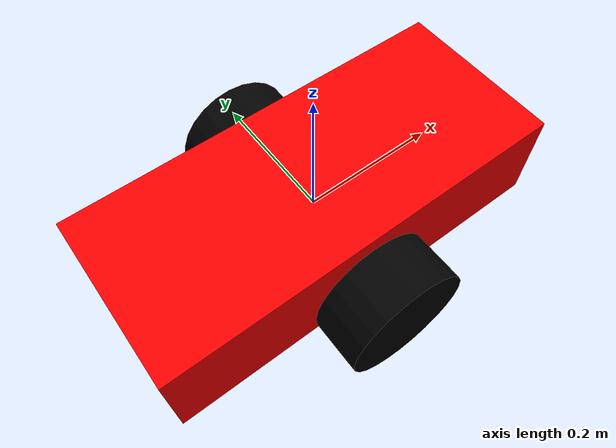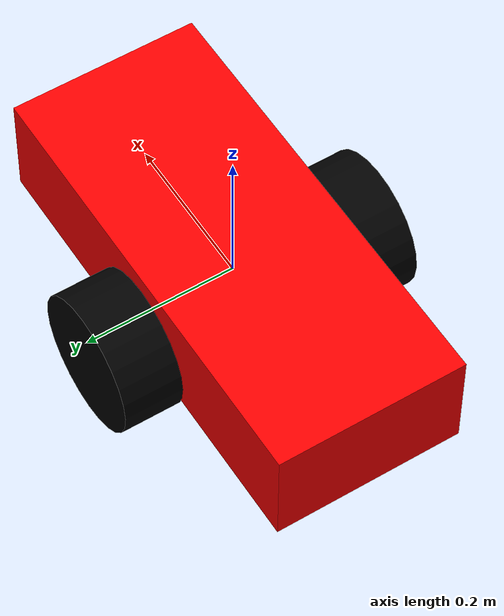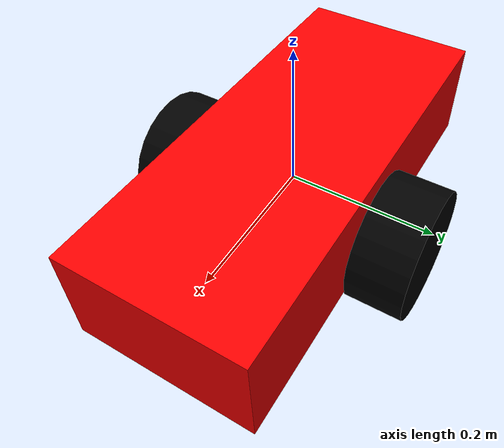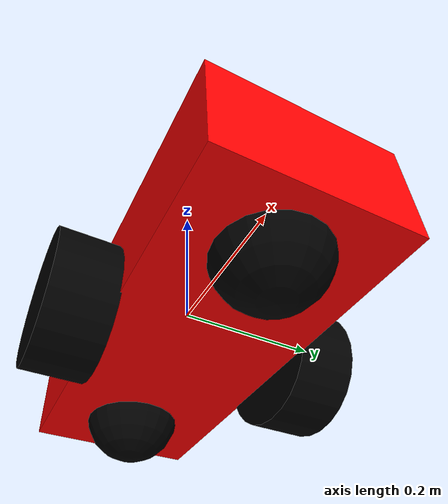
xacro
<?xml version="1.0" ?>
<robot name="mapping_rover" xmlns:xacro="http://ros.org/wiki/xacro">

<!-- ****************** ROBOT CONSTANTS *******************************  -->
  <!-- Define the size of the robot's main chassis in meters -->
  <xacro:property name="base_width" value="0.25"/>
  <xacro:property name="base_length" value="0.59"/>
  <xacro:property name="base_height" value="0.145"/>

  <!-- Define the shape of the robot's two back wheels in meters -->
  <xacro:property name="wheel_radius" value="0.09"/>
  <xacro:property name="wheel_width" value="0.08"/>

  <!-- Define the shape of the robot's two caster in meters -->
  <xacro:property name="caster_radius" value="0.07"/>

  <!-- x-axis points forward, y-axis points to left, z-axis points upwards -->

  <!-- Define the gap between the wheel and chassis along y-axis in meters -->
  <xacro:property name="wheel_ygap" value="0.0380"/>

  <!-- Position the wheels along the z-axis -->
  <xacro:property name="wheel_zoff" value="-0.0425"/>

  <!-- Position the wheels along the x-axis -->
  <xacro:property name="wheel_xoff" value="0"/>

  <!-- Position the front caster wheel along the x-axis -->
  <xacro:property name="front_caster_xoff" value="0.2"/>

  <!-- Position the front and back caster wheel along the z-axis -->
  <xacro:property name="caster_zoff" value="-0.0625"/>

  <!-- Position the back caster wheel along the x-axis -->
  <xacro:property name="back_caster_xoff" value="-0.2"/>

  <!-- Material colour -->
  <material name="black">
      <color rgba="0 0 0 1"/>
   </material>

  <!-- Define intertial property macros  -->
  <xacro:macro name="box_inertia" params="m w h d">
    <inertial>
      <origin xyz="0 0 0" rpy="${pi/2} 0 ${pi/2}"/>
      <mass value="15.8"/>
      <inertia ixx="1.92233333" ixy="0.0" ixz="0.0" iyy="5.08233333" iyz="0.0" izz="6.34633333"/>
    </inertial>
  </xacro:macro>

  <xacro:macro name="cylinder_inertia" params="m r h">
    <inertial>
      <origin xyz="0 0 0" rpy="${pi/2} 0 0" />
      <mass value="1"/>
      <inertia ixx="0.145833" ixy = "0" ixz = "0" iyy="0.145833" iyz = "0" izz="0.125"/>
    </inertial>
  </xacro:macro>

  <xacro:macro name="sphere_inertia" params="m r">
    <inertial>
      <mass value="1"/>
      <inertia ixx="0.1" ixy="0.0" ixz="0.0" iyy="0.1" iyz="0.0" izz="0.1"/>
    </inertial>
  </xacro:macro>

  <!-- ********************** ROBOT BASE *********************************  -->
  <link name="base_link">
    <visual>
      <origin xyz="0 0 0" rpy="0 0 3.141592654"/>
      <geometry>
        <box size="${base_length} ${base_width} ${base_height}"/>
      </geometry>
      <material name="Red">
        <color rgba="${255/255} ${0/255} ${0/255} 1.0"/>
      </material>
    </visual>

    <collision>
      <geometry>
        <box size="${base_length} ${base_width} ${base_height}"/>
      </geometry>
    </collision>

    <xacro:box_inertia m="15.8" w="${base_width}" d="${base_length}" h="${base_height}"/>

  </link>

  <gazebo reference="base_link">
    <material>Gazebo/Red</material>
  </gazebo>

  <!-- ****************** ROBOT BASE FOOTPRINT ***************************  -->
  <!-- Define the center of the main robot chassis projected on the ground -->
  <link name="base_footprint">
  </link>

  <!-- The base footprint of the robot is located underneath the chassis -->
  <joint name="base_footprint_joint" type="fixed">
    <parent link="base_link"/>
    <child link="base_footprint" />
    <origin xyz="0.0 0.0 0.0" rpy="0 0 0"/>
  </joint>

   <!-- LEFT WHEEL LINK -->

    <joint name="left_wheel_joint" type="continuous">
        <parent link="base_link"/>
        <child link="left_wheel_link"/>
        <origin xyz="${-1*wheel_xoff} ${1*(base_width/2+wheel_ygap)} ${wheel_zoff}" rpy="0 0 0"/>
        <axis xyz="0 1 0"/>
    </joint>

    <link name="left_wheel_link">
        <visual>
            <origin xyz="0 0 0" rpy="1.5707963267949 0 0"/>
            <geometry>
                <cylinder radius="${wheel_radius}" length="${wheel_width}"/>
            </geometry>
            <material name="black">
              <color rgba="0 0 0 1"/>
            </material>
        </visual>

        <collision>
            <origin xyz="0 0 0" rpy="${pi/2} 0 0"/>
            <geometry>
                <cylinder radius="${wheel_radius}" length="${wheel_width}"/>
            </geometry>
        </collision>

        <xacro:cylinder_inertia m="1" r="${wheel_radius}" h="${wheel_width}"/>

    </link>

    <gazebo reference="left_wheel_link">
        <mu1>1</mu1>
        <mu2>1</mu2>
        <material>Gazebo/Black</material>
    </gazebo>

    <!-- RIGHT WHEEL LINK -->

    <joint name="right_wheel_joint" type="continuous">
        <parent link="base_link"/>
        <child link="right_wheel_link"/>
        <origin xyz="${-1*wheel_xoff} ${-1*(base_width/2+wheel_ygap)} ${wheel_zoff}" rpy="0 0 0"/>
        <axis xyz="0 1 0"/>
    </joint>

    <link name="right_wheel_link">
        <visual>
            <origin xyz="0 0 0" rpy="1.5707963267949 0 0"/>
            <geometry>
                <cylinder radius="${wheel_radius}" length="${wheel_width}"/>
            </geometry>
            <material name="black">
              <color rgba="0 0 0 1"/>
            </material>
        </visual>

        <collision>
            <origin xyz="0 0 0" rpy="${pi/2} 0 0"/>
            <geometry>
                <cylinder radius="${wheel_radius}" length="${wheel_width}"/>
            </geometry>
        </collision>

        <xacro:cylinder_inertia m="1" r="${wheel_radius}" h="${wheel_width}"/>

    </link>

    <gazebo reference="right_wheel_link">
        <mu1>1</mu1>
        <mu2>1</mu2>
        <material>Gazebo/Black</material>
    </gazebo>

  <!-- *********************** CASTER WHEEL ******************************  -->

  <link name="front_caster_link">
    <visual>
      <geometry>
        <sphere radius="${caster_radius}"/>
      </geometry>
      <material name="black">
        <color rgba="0 0 0 1"/>
      </material>
    </visual>
    <collision>
      <origin xyz="0 0 0" rpy="0 0 0"/>
      <geometry>
        <sphere radius="${caster_radius}"/>
      </geometry>
    </collision>
    <xacro:sphere_inertia m="1" r="${caster_radius}"/>
  </link>

  <gazebo reference="front_caster_link">
    <mu1>0.01</mu1>
    <mu2>0.01</mu2>
    <material>Gazebo/Black</material>
  </gazebo>

  <joint name="front_caster_joint" type="fixed">
    <parent link="base_link"/>
    <child link="front_caster_link"/>
    <origin xyz="${front_caster_xoff} 0.0 ${caster_zoff}" rpy="0 0 0"/>
  </joint>

  <link name="back_caster_link">
    <visual>
      <geometry>
        <sphere radius="${caster_radius}"/>
      </geometry>
      <material name="black">
        <color rgba="0 0 0 1"/>
      </material>
    </visual>
    <collision>
      <origin xyz="0 0 0" rpy="0 0 0"/>
      <geometry>
        <sphere radius="${caster_radius}"/>
      </geometry>
    </collision>
    <xacro:sphere_inertia m="1" r="${caster_radius}"/>
  </link>

  <gazebo reference="back_caster_link">
    <mu1>0.01</mu1>
    <mu2>0.01</mu2>
    <material>Gazebo/Black</material>
  </gazebo>

  <joint name="back_caster_joint" type="fixed">
    <parent link="base_link"/>
    <child link="back_caster_link"/>
    <origin xyz="${back_caster_xoff} 0.0 ${caster_zoff}" rpy="0 0 0"/>
  </joint>

</robot>
